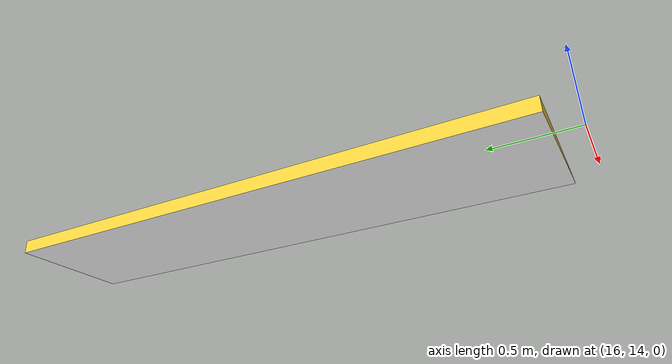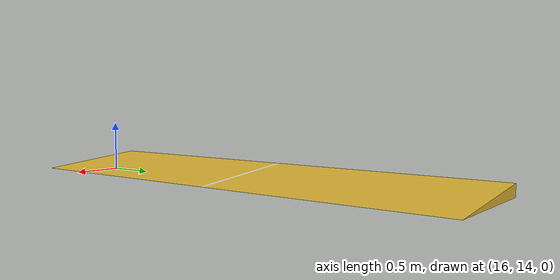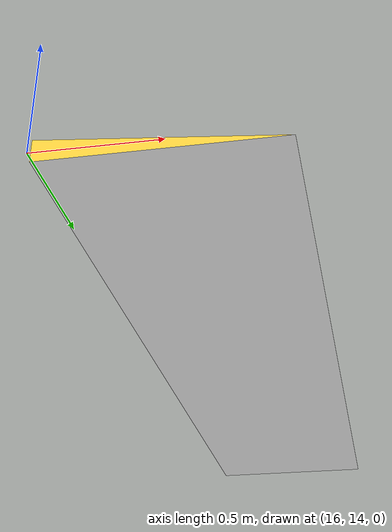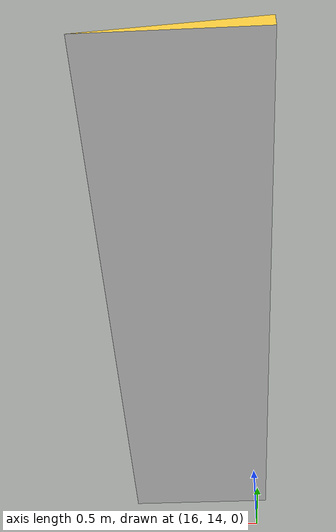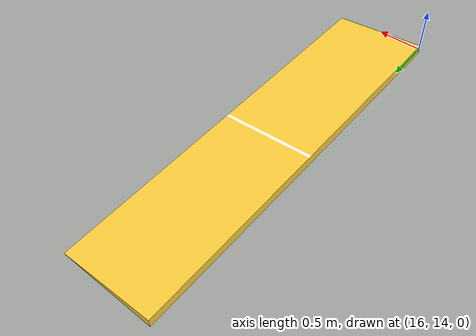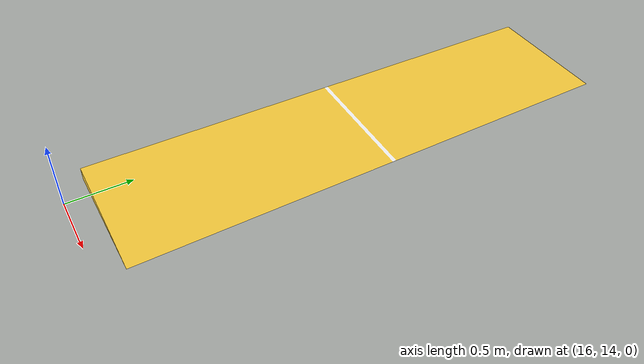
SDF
<?xml version="1.0"?>
<sdf version="1.6">
  <model name="abu2024_slope3">
      <pose>0 0 0  0 0 0</pose>
      <static>true</static>
      <link name="body">
        <visual name="visual">
          <geometry>
            <mesh><uri>model://abu2024_slope3/meshes/slope3.dae</uri></mesh>
          </geometry>
        </visual>
        <collision name="collision">
          <geometry>
            <mesh><uri>model://abu2024_slope3/meshes/slope3.dae</uri></mesh>
          </geometry>
        </collision>
      </link>
 </model>
</sdf>
